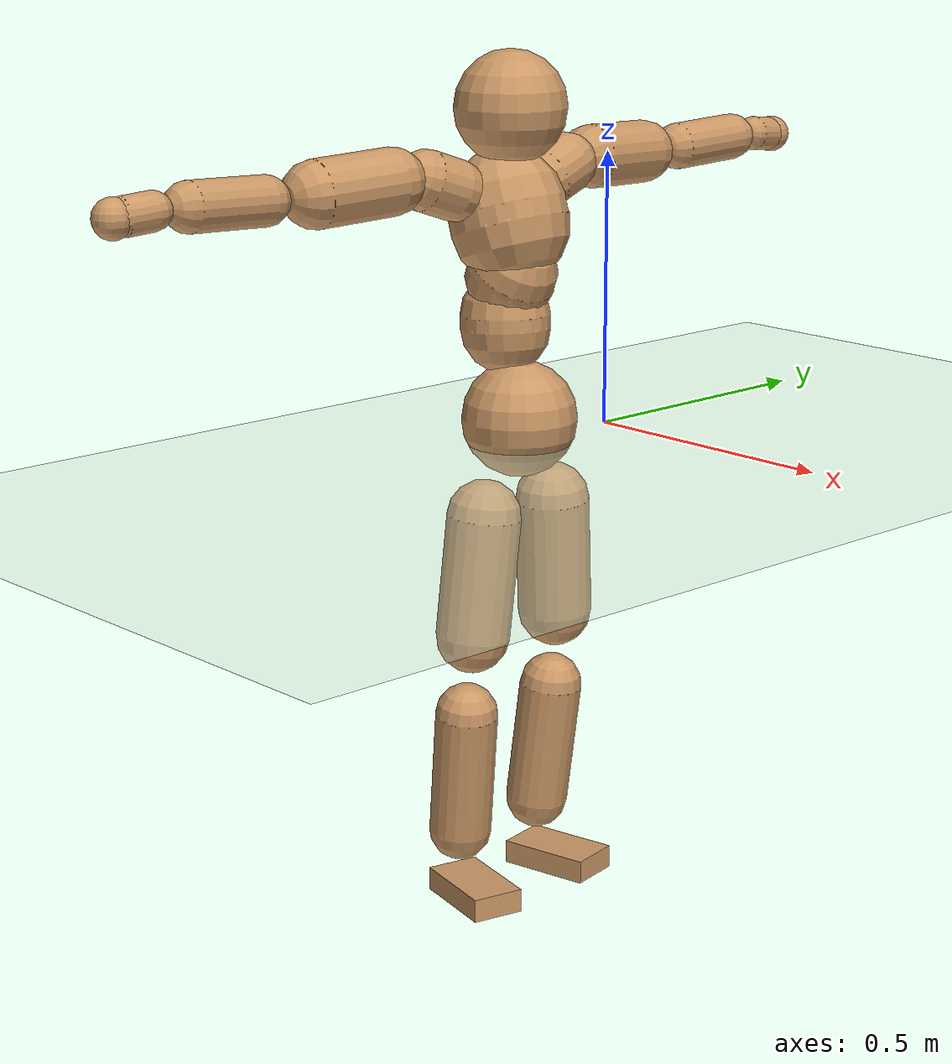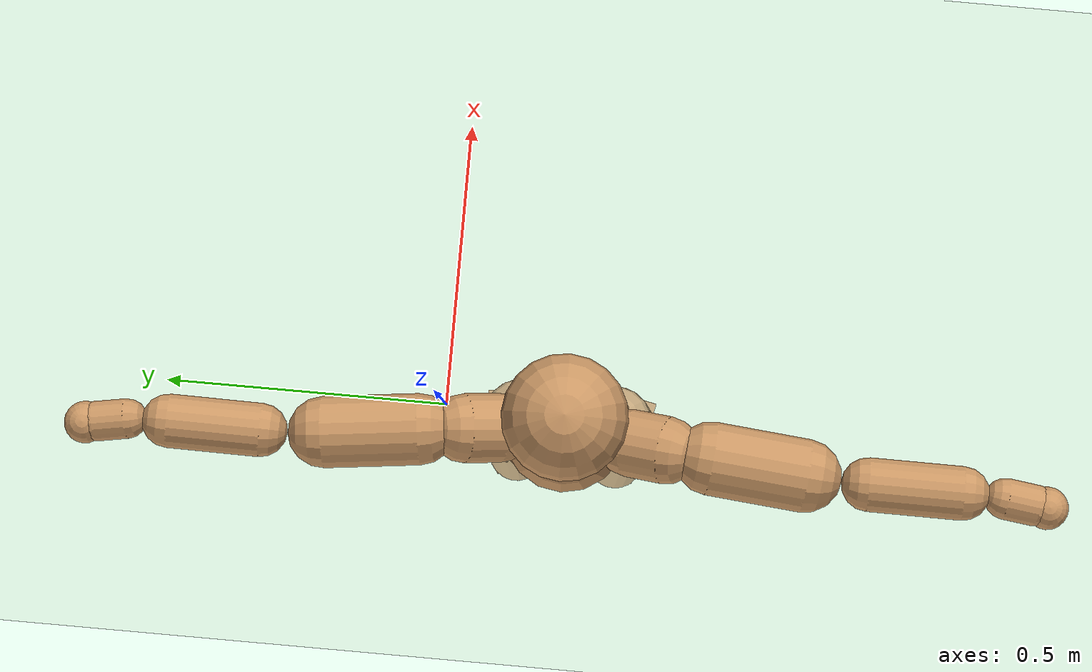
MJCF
<mujoco model="humanoid">
  <compiler coordinate="local"/>
  <default>
    <joint damping="0.0" armature="0.01" stiffness="0.0" limited="true"/>
    <geom conaffinity="1" condim="3" contype="7" margin="0.001" rgba="0.8 0.6 .4 1"/>
  </default>
  <asset>
    <texture type="skybox" builtin="gradient" rgb1=".4 .5 .6" rgb2="0 0 0" width="100" height="100"/>
    <texture builtin="flat" height="1278" mark="cross" markrgb="1 1 1" name="texgeom" random="0.01" rgb1="0.8 0.6 0.4" rgb2="0.8 0.6 0.4" type="cube" width="127"/>
    <texture builtin="checker" height="100" name="texplane" rgb1="0 0 0" rgb2="0.8 0.8 0.8" type="2d" width="100"/>
    <material name="MatPlane" reflectance="0.5" shininess="1" specular="1" texrepeat="60 60" texture="texplane"/>
    <material name="geom" texture="texgeom" texuniform="true"/>
  </asset>
  <worldbody>
    <light cutoff="100" diffuse="1 1 1" dir="-0 0 -1.3" directional="true" exponent="1" pos="0 0 1.3" specular=".1 .1 .1"/>
    <geom conaffinity="1" condim="3" name="floor" pos="0 0 0" rgba="0.8 0.9 0.8 1" size="100 100 .2" type="plane" material="MatPlane"/>
    <body name="Pelvis" pos="0.0005 -0.2168 0.0434">
      <freejoint name="Pelvis"/>
      <geom type="sphere" contype="1" conaffinity="1" density="500" size="0.1048" pos="0.0000 0.0000 0.0000" name="Pelvis"/>
      <body name="L_Hip" pos="-0.0014 0.0808 -0.0932">
        <joint name="L_Hip_x" type="hinge" pos="0 0 0" axis="1 0 0" stiffness="800" damping="80" armature="0.02" range="-180.0000 180.0000"/>
        <joint name="L_Hip_y" type="hinge" pos="0 0 0" axis="0 1 0" stiffness="800" damping="80" armature="0.02" range="-180.0000 180.0000"/>
        <joint name="L_Hip_z" type="hinge" pos="0 0 0" axis="0 0 1" stiffness="800" damping="80" armature="0.02" range="-180.0000 180.0000"/>
        <geom type="capsule" contype="1" conaffinity="1" density="500" fromto="-0.0026 0.0054 -0.0723 -0.0106 0.0215 -0.2894" size="0.0679" name="L_Hip"/>
        <body name="L_Knee" pos="-0.0132 0.0269 -0.3617">
          <joint name="L_Knee_x" type="hinge" pos="0 0 0" axis="1 0 0" stiffness="800" damping="80" armature="0.02" range="-180.0000 180.0000"/>
          <joint name="L_Knee_y" type="hinge" pos="0 0 0" axis="0 1 0" stiffness="800" damping="80" armature="0.02" range="-180.0000 180.0000"/>
          <joint name="L_Knee_z" type="hinge" pos="0 0 0" axis="0 0 1" stiffness="800" damping="80" armature="0.02" range="-180.0000 180.0000"/>
          <geom type="capsule" contype="1" conaffinity="1" density="500" fromto="-0.0097 -0.0025 -0.0781 -0.0390 -0.0099 -0.3124" size="0.0576" name="L_Knee"/>
          <body name="L_Ankle" pos="-0.0487 -0.0124 -0.3905">
            <joint name="L_Ankle_x" type="hinge" pos="0 0 0" axis="1 0 0" stiffness="800" damping="80" armature="0.02" range="-180.0000 180.0000"/>
            <joint name="L_Ankle_y" type="hinge" pos="0 0 0" axis="0 1 0" stiffness="800" damping="80" armature="0.02" range="-180.0000 180.0000"/>
            <joint name="L_Ankle_z" type="hinge" pos="0 0 0" axis="0 0 1" stiffness="800" damping="80" armature="0.02" range="-180.0000 180.0000"/>
            <geom type="box" contype="1" conaffinity="1" density="500" pos="0.0592 0.0116 -0.0277" size="0.0856 0.0484 0.0214" quat="0.9953 0.0000 0.0000 0.0965" name="L_Ankle"/>
            <body name="L_Toe" pos="0.1184 0.0232 -0.0554">
              <joint name="L_Toe_x" type="hinge" pos="0 0 0" axis="1 0 0" stiffness="500" damping="50" armature="0.02" range="-180.0000 180.0000"/>
              <joint name="L_Toe_y" type="hinge" pos="0 0 0" axis="0 1 0" stiffness="500" damping="50" armature="0.02" range="-180.0000 180.0000"/>
              <joint name="L_Toe_z" type="hinge" pos="0 0 0" axis="0 0 1" stiffness="500" damping="50" armature="0.02" range="-180.0000 180.0000"/>
              <geom type="box" contype="1" conaffinity="1" density="500" pos="0.0000 0.0000 0.0276" size="0.001 0.0024 0.0011" quat="0.9947 0.0000 0.0000 0.1029" name="L_Toe"/>
            </body>
          </body>
        </body>
      </body>
      <body name="R_Hip" pos="0.0019 -0.0785 -0.0929">
        <joint name="R_Hip_x" type="hinge" pos="0 0 0" axis="1 0 0" stiffness="800" damping="80" armature="0.02" range="-180.0000 180.0000"/>
        <joint name="R_Hip_y" type="hinge" pos="0 0 0" axis="0 1 0" stiffness="800" damping="80" armature="0.02" range="-180.0000 180.0000"/>
        <joint name="R_Hip_z" type="hinge" pos="0 0 0" axis="0 0 1" stiffness="800" damping="80" armature="0.02" range="-180.0000 180.0000"/>
        <geom type="capsule" contype="1" conaffinity="1" density="500" fromto="-0.0030 -0.0066 -0.0739 -0.0122 -0.0264 -0.2955" size="0.0672" name="R_Hip"/>
        <body name="R_Knee" pos="-0.0152 -0.0331 -0.3693">
          <joint name="R_Knee_x" type="hinge" pos="0 0 0" axis="1 0 0" stiffness="800" damping="80" armature="0.02" range="-180.0000 180.0000"/>
          <joint name="R_Knee_y" type="hinge" pos="0 0 0" axis="0 1 0" stiffness="800" damping="80" armature="0.02" range="-180.0000 180.0000"/>
          <joint name="R_Knee_z" type="hinge" pos="0 0 0" axis="0 0 1" stiffness="800" damping="80" armature="0.02" range="-180.0000 180.0000"/>
          <geom type="capsule" contype="1" conaffinity="1" density="500" fromto="-0.0095 0.0029 -0.0784 -0.0378 0.0115 -0.3135" size="0.0574" name="R_Knee"/>
          <body name="R_Ankle" pos="-0.0473 0.0144 -0.3919">
            <joint name="R_Ankle_x" type="hinge" pos="0 0 0" axis="1 0 0" stiffness="800" damping="80" armature="0.02" range="-180.0000 180.0000"/>
            <joint name="R_Ankle_y" type="hinge" pos="0 0 0" axis="0 1 0" stiffness="800" damping="80" armature="0.02" range="-180.0000 180.0000"/>
            <joint name="R_Ankle_z" type="hinge" pos="0 0 0" axis="0 0 1" stiffness="800" damping="80" armature="0.02" range="-180.0000 180.0000"/>
            <geom type="box" contype="1" conaffinity="1" density="500" pos="0.0610 -0.0135 -0.0241" size="0.0854 0.0484 0.0215" quat="0.9940 0.0000 0.0000 -0.1089" name="R_Ankle"/>
            <body name="R_Toe" pos="0.1221 -0.0271 -0.0481">
              <joint name="R_Toe_x" type="hinge" pos="0 0 0" axis="1 0 0" stiffness="500" damping="50" armature="0.02" range="-180.0000 180.0000"/>
              <joint name="R_Toe_y" type="hinge" pos="0 0 0" axis="0 1 0" stiffness="500" damping="50" armature="0.02" range="-180.0000 180.0000"/>
              <joint name="R_Toe_z" type="hinge" pos="0 0 0" axis="0 0 1" stiffness="500" damping="50" armature="0.02" range="-180.0000 180.0000"/>
              <geom type="box" contype="1" conaffinity="1" density="500" pos="0.0000 0.0000 0.0244" size="0.001 0.0024 0.0011" quat="0.9950 0.0000 0.0000 -0.0996" name="R_Toe"/>
            </body>
          </body>
        </body>
      </body>
      <body name="Torso" pos="-0.0336 -0.0021 0.1097">
        <joint name="Torso_x" type="hinge" pos="0 0 0" axis="1 0 0" stiffness="1000" damping="100" armature="0.02" range="-180.0000 180.0000"/>
        <joint name="Torso_y" type="hinge" pos="0 0 0" axis="0 1 0" stiffness="1000" damping="100" armature="0.02" range="-180.0000 180.0000"/>
        <joint name="Torso_z" type="hinge" pos="0 0 0" axis="0 0 1" stiffness="1000" damping="100" armature="0.02" range="-180.0000 180.0000"/>
        <geom type="capsule" contype="1" conaffinity="1" density="500" fromto="-0.0036 0.0015 0.0729 -0.0024 0.0010 0.0486" size="0.081" name="Torso"/>
        <body name="Spine" pos="-0.006 0.0026 0.1215">
          <joint name="Spine_x" type="hinge" pos="0 0 0" axis="1 0 0" stiffness="1000" damping="100" armature="0.02" range="-180.0000 180.0000"/>
          <joint name="Spine_y" type="hinge" pos="0 0 0" axis="0 1 0" stiffness="1000" damping="100" armature="0.02" range="-180.0000 180.0000"/>
          <joint name="Spine_z" type="hinge" pos="0 0 0" axis="0 0 1" stiffness="1000" damping="100" armature="0.02" range="-180.0000 180.0000"/>
          <geom type="capsule" contype="1" conaffinity="1" density="500" fromto="0.0194 0.0012 0.0294 0.0129 0.0008 0.0196" size="0.0809" name="Spine"/>
          <body name="Chest" pos="0.0323 0.002 0.0491">
            <joint name="Chest_x" type="hinge" pos="0 0 0" axis="1 0 0" stiffness="1000" damping="100" armature="0.02" range="-180.0000 180.0000"/>
            <joint name="Chest_y" type="hinge" pos="0 0 0" axis="0 1 0" stiffness="1000" damping="100" armature="0.02" range="-180.0000 180.0000"/>
            <joint name="Chest_z" type="hinge" pos="0 0 0" axis="0 0 1" stiffness="1000" damping="100" armature="0.02" range="-180.0000 180.0000"/>
            <geom type="capsule" contype="1" conaffinity="1" density="500" fromto="-0.0299 -0.0004 0.0943 -0.0199 -0.0003 0.0629" size="0.1064" name="Chest"/>
            <body name="Neck" pos="-0.0649 -0.0007 0.2184">
              <joint name="Neck_x" type="hinge" pos="0 0 0" axis="1 0 0" stiffness="500" damping="50" armature="0.02" range="-180.0000 180.0000"/>
              <joint name="Neck_y" type="hinge" pos="0 0 0" axis="0 1 0" stiffness="500" damping="50" armature="0.02" range="-180.0000 180.0000"/>
              <joint name="Neck_z" type="hinge" pos="0 0 0" axis="0 0 1" stiffness="500" damping="50" armature="0.02" range="-180.0000 180.0000"/>
              <geom type="capsule" contype="1" conaffinity="1" density="500" fromto="0.0088 0.0004 0.0104 0.0352 0.0015 0.0414" size="0.0435" name="Neck"/>
              <body name="Head" pos="0.044 0.0019 0.0518">
                <joint name="Head_x" type="hinge" pos="0 0 0" axis="1 0 0" stiffness="500" damping="50" armature="0.02" range="-180.0000 180.0000"/>
                <joint name="Head_y" type="hinge" pos="0 0 0" axis="0 1 0" stiffness="500" damping="50" armature="0.02" range="-180.0000 180.0000"/>
                <joint name="Head_z" type="hinge" pos="0 0 0" axis="0 0 1" stiffness="500" damping="50" armature="0.02" range="-180.0000 180.0000"/>
                <geom type="sphere" contype="1" conaffinity="1" density="500" size="0.1010" pos="0.0000 0.0000 0.0000" name="Head"/>
              </body>
            </body>
            <body name="L_Thorax" pos="-0.0397 0.0854 0.1277">
              <joint name="L_Thorax_x" type="hinge" pos="0 0 0" axis="1 0 0" stiffness="500" damping="50" armature="0.02" range="-180.0000 180.0000"/>
              <joint name="L_Thorax_y" type="hinge" pos="0 0 0" axis="0 1 0" stiffness="500" damping="50" armature="0.02" range="-180.0000 180.0000"/>
              <joint name="L_Thorax_z" type="hinge" pos="0 0 0" axis="0 0 1" stiffness="500" damping="50" armature="0.02" range="-180.0000 180.0000"/>
              <geom type="capsule" contype="1" conaffinity="1" density="500" fromto="-0.0020 0.0191 0.0067 -0.0081 0.0763 0.0269" size="0.0561" name="L_Thorax"/>
              <body name="L_Shoulder" pos="-0.0102 0.0954 0.0336">
                <joint name="L_Shoulder_x" type="hinge" pos="0 0 0" axis="1 0 0" stiffness="500" damping="50" armature="0.02" range="-720.0000 720.0000"/>
                <joint name="L_Shoulder_y" type="hinge" pos="0 0 0" axis="0 1 0" stiffness="500" damping="50" armature="0.02" range="-720.0000 720.0000"/>
                <joint name="L_Shoulder_z" type="hinge" pos="0 0 0" axis="0 0 1" stiffness="500" damping="50" armature="0.02" range="-720.0000 720.0000"/>
                <geom type="capsule" contype="1" conaffinity="1" density="500" fromto="-0.0061 0.0515 -0.0021 -0.0244 0.2062 -0.0082" size="0.058" name="L_Shoulder"/>
                <body name="L_Elbow" pos="-0.0305 0.2577 -0.0103">
                  <joint name="L_Elbow_x" type="hinge" pos="0 0 0" axis="1 0 0" stiffness="500" damping="50" armature="0.02" range="-720.0000 720.0000"/>
                  <joint name="L_Elbow_y" type="hinge" pos="0 0 0" axis="0 1 0" stiffness="500" damping="50" armature="0.02" range="-720.0000 720.0000"/>
                  <joint name="L_Elbow_z" type="hinge" pos="0 0 0" axis="0 0 1" stiffness="500" damping="50" armature="0.02" range="-720.0000 720.0000"/>
                  <geom type="capsule" contype="1" conaffinity="1" density="500" fromto="0.0005 0.0496 0.0020 0.0019 0.1986 0.0078" size="0.0434" name="L_Elbow"/>
                  <body name="L_Wrist" pos="0.0023 0.2482 0.0098">
                    <joint name="L_Wrist_x" type="hinge" pos="0 0 0" axis="1 0 0" stiffness="300" damping="30" armature="0.02" range="-180.0000 180.0000"/>
                    <joint name="L_Wrist_y" type="hinge" pos="0 0 0" axis="0 1 0" stiffness="300" damping="30" armature="0.02" range="-180.0000 180.0000"/>
                    <joint name="L_Wrist_z" type="hinge" pos="0 0 0" axis="0 0 1" stiffness="300" damping="30" armature="0.02" range="-180.0000 180.0000"/>
                    <geom type="capsule" contype="1" conaffinity="1" density="500" fromto="-0.0028 0.0170 -0.0019 -0.0114 0.0681 -0.0076" size="0.0325" name="L_Wrist"/>
                    <body name="L_Hand" pos="-0.0142 0.0851 -0.0095">
                      <joint name="L_Hand_x" type="hinge" pos="0 0 0" axis="1 0 0" stiffness="300" damping="30" armature="0.02" range="-180.0000 180.0000"/>
                      <joint name="L_Hand_y" type="hinge" pos="0 0 0" axis="0 1 0" stiffness="300" damping="30" armature="0.02" range="-180.0000 180.0000"/>
                      <joint name="L_Hand_z" type="hinge" pos="0 0 0" axis="0 0 1" stiffness="300" damping="30" armature="0.02" range="-180.0000 180.0000"/>
                      <geom type="sphere" contype="1" conaffinity="1" density="500" size="0.0342" pos="0.0000 0.0000 0.0000" name="L_Hand"/>
                    </body>
                  </body>
                </body>
              </body>
            </body>
            <body name="R_Thorax" pos="-0.0448 -0.087 0.1255">
              <joint name="R_Thorax_x" type="hinge" pos="0 0 0" axis="1 0 0" stiffness="500" damping="50" armature="0.02" range="-180.0000 180.0000"/>
              <joint name="R_Thorax_y" type="hinge" pos="0 0 0" axis="0 1 0" stiffness="500" damping="50" armature="0.02" range="-180.0000 180.0000"/>
              <joint name="R_Thorax_z" type="hinge" pos="0 0 0" axis="0 0 1" stiffness="500" damping="50" armature="0.02" range="-180.0000 180.0000"/>
              <geom type="capsule" contype="1" conaffinity="1" density="500" fromto="-0.0024 -0.0200 0.0071 -0.0095 -0.0799 0.0285" size="0.055" name="R_Thorax"/>
              <body name="R_Shoulder" pos="-0.0119 -0.0999 0.0357">
                <joint name="R_Shoulder_x" type="hinge" pos="0 0 0" axis="1 0 0" stiffness="500" damping="50" armature="0.02" range="-720.0000 720.0000"/>
                <joint name="R_Shoulder_y" type="hinge" pos="0 0 0" axis="0 1 0" stiffness="500" damping="50" armature="0.02" range="-720.0000 720.0000"/>
                <joint name="R_Shoulder_z" type="hinge" pos="0 0 0" axis="0 0 1" stiffness="500" damping="50" armature="0.02" range="-720.0000 720.0000"/>
                <geom type="capsule" contype="1" conaffinity="1" density="500" fromto="-0.0047 -0.0514 -0.0025 -0.0187 -0.2056 -0.0100" size="0.0595" name="R_Shoulder"/>
                <body name="R_Elbow" pos="-0.0233 -0.257 -0.0125">
                  <joint name="R_Elbow_x" type="hinge" pos="0 0 0" axis="1 0 0" stiffness="500" damping="50" armature="0.02" range="-720.0000 720.0000"/>
                  <joint name="R_Elbow_y" type="hinge" pos="0 0 0" axis="0 1 0" stiffness="500" damping="50" armature="0.02" range="-720.0000 720.0000"/>
                  <joint name="R_Elbow_z" type="hinge" pos="0 0 0" axis="0 0 1" stiffness="500" damping="50" armature="0.02" range="-720.0000 720.0000"/>
                  <geom type="capsule" contype="1" conaffinity="1" density="500" fromto="-0.0003 -0.0509 0.0019 -0.0011 -0.2035 0.0075" size="0.0436" name="R_Elbow"/>
                  <body name="R_Wrist" pos="-0.0014 -0.2544 0.0094">
                    <joint name="R_Wrist_x" type="hinge" pos="0 0 0" axis="1 0 0" stiffness="300" damping="30" armature="0.02" range="-180.0000 180.0000"/>
                    <joint name="R_Wrist_y" type="hinge" pos="0 0 0" axis="0 1 0" stiffness="300" damping="30" armature="0.02" range="-180.0000 180.0000"/>
                    <joint name="R_Wrist_z" type="hinge" pos="0 0 0" axis="0 0 1" stiffness="300" damping="30" armature="0.02" range="-180.0000 180.0000"/>
                    <geom type="capsule" contype="1" conaffinity="1" density="500" fromto="-0.0022 -0.0173 -0.0014 -0.0089 -0.0694 -0.0058" size="0.0335" name="R_Wrist"/>
                    <body name="R_Hand" pos="-0.0112 -0.0867 -0.0072">
                      <joint name="R_Hand_x" type="hinge" pos="0 0 0" axis="1 0 0" stiffness="300" damping="30" armature="0.02" range="-180.0000 180.0000"/>
                      <joint name="R_Hand_y" type="hinge" pos="0 0 0" axis="0 1 0" stiffness="300" damping="30" armature="0.02" range="-180.0000 180.0000"/>
                      <joint name="R_Hand_z" type="hinge" pos="0 0 0" axis="0 0 1" stiffness="300" damping="30" armature="0.02" range="-180.0000 180.0000"/>
                      <geom type="sphere" contype="1" conaffinity="1" density="500" size="0.0348" pos="0.0000 0.0000 0.0000" name="R_Hand"/>
                    </body>
                  </body>
                </body>
              </body>
            </body>
          </body>
        </body>
      </body>
    </body>
  </worldbody>
  <actuator>
    <motor name="L_Hip_x" joint="L_Hip_x" gear="500"/>
    <motor name="L_Hip_y" joint="L_Hip_y" gear="500"/>
    <motor name="L_Hip_z" joint="L_Hip_z" gear="500"/>
    <motor name="L_Knee_x" joint="L_Knee_x" gear="500"/>
    <motor name="L_Knee_y" joint="L_Knee_y" gear="500"/>
    <motor name="L_Knee_z" joint="L_Knee_z" gear="500"/>
    <motor name="L_Ankle_x" joint="L_Ankle_x" gear="500"/>
    <motor name="L_Ankle_y" joint="L_Ankle_y" gear="500"/>
    <motor name="L_Ankle_z" joint="L_Ankle_z" gear="500"/>
    <motor name="L_Toe_x" joint="L_Toe_x" gear="500"/>
    <motor name="L_Toe_y" joint="L_Toe_y" gear="500"/>
    <motor name="L_Toe_z" joint="L_Toe_z" gear="500"/>
    <motor name="R_Hip_x" joint="R_Hip_x" gear="500"/>
    <motor name="R_Hip_y" joint="R_Hip_y" gear="500"/>
    <motor name="R_Hip_z" joint="R_Hip_z" gear="500"/>
    <motor name="R_Knee_x" joint="R_Knee_x" gear="500"/>
    <motor name="R_Knee_y" joint="R_Knee_y" gear="500"/>
    <motor name="R_Knee_z" joint="R_Knee_z" gear="500"/>
    <motor name="R_Ankle_x" joint="R_Ankle_x" gear="500"/>
    <motor name="R_Ankle_y" joint="R_Ankle_y" gear="500"/>
    <motor name="R_Ankle_z" joint="R_Ankle_z" gear="500"/>
    <motor name="R_Toe_x" joint="R_Toe_x" gear="500"/>
    <motor name="R_Toe_y" joint="R_Toe_y" gear="500"/>
    <motor name="R_Toe_z" joint="R_Toe_z" gear="500"/>
    <motor name="Torso_x" joint="Torso_x" gear="500"/>
    <motor name="Torso_y" joint="Torso_y" gear="500"/>
    <motor name="Torso_z" joint="Torso_z" gear="500"/>
    <motor name="Spine_x" joint="Spine_x" gear="500"/>
    <motor name="Spine_y" joint="Spine_y" gear="500"/>
    <motor name="Spine_z" joint="Spine_z" gear="500"/>
    <motor name="Chest_x" joint="Chest_x" gear="500"/>
    <motor name="Chest_y" joint="Chest_y" gear="500"/>
    <motor name="Chest_z" joint="Chest_z" gear="500"/>
    <motor name="Neck_x" joint="Neck_x" gear="500"/>
    <motor name="Neck_y" joint="Neck_y" gear="500"/>
    <motor name="Neck_z" joint="Neck_z" gear="500"/>
    <motor name="Head_x" joint="Head_x" gear="500"/>
    <motor name="Head_y" joint="Head_y" gear="500"/>
    <motor name="Head_z" joint="Head_z" gear="500"/>
    <motor name="L_Thorax_x" joint="L_Thorax_x" gear="500"/>
    <motor name="L_Thorax_y" joint="L_Thorax_y" gear="500"/>
    <motor name="L_Thorax_z" joint="L_Thorax_z" gear="500"/>
    <motor name="L_Shoulder_x" joint="L_Shoulder_x" gear="500"/>
    <motor name="L_Shoulder_y" joint="L_Shoulder_y" gear="500"/>
    <motor name="L_Shoulder_z" joint="L_Shoulder_z" gear="500"/>
    <motor name="L_Elbow_x" joint="L_Elbow_x" gear="500"/>
    <motor name="L_Elbow_y" joint="L_Elbow_y" gear="500"/>
    <motor name="L_Elbow_z" joint="L_Elbow_z" gear="500"/>
    <motor name="L_Wrist_x" joint="L_Wrist_x" gear="500"/>
    <motor name="L_Wrist_y" joint="L_Wrist_y" gear="500"/>
    <motor name="L_Wrist_z" joint="L_Wrist_z" gear="500"/>
    <motor name="L_Hand_x" joint="L_Hand_x" gear="500"/>
    <motor name="L_Hand_y" joint="L_Hand_y" gear="500"/>
    <motor name="L_Hand_z" joint="L_Hand_z" gear="500"/>
    <motor name="R_Thorax_x" joint="R_Thorax_x" gear="500"/>
    <motor name="R_Thorax_y" joint="R_Thorax_y" gear="500"/>
    <motor name="R_Thorax_z" joint="R_Thorax_z" gear="500"/>
    <motor name="R_Shoulder_x" joint="R_Shoulder_x" gear="500"/>
    <motor name="R_Shoulder_y" joint="R_Shoulder_y" gear="500"/>
    <motor name="R_Shoulder_z" joint="R_Shoulder_z" gear="500"/>
    <motor name="R_Elbow_x" joint="R_Elbow_x" gear="500"/>
    <motor name="R_Elbow_y" joint="R_Elbow_y" gear="500"/>
    <motor name="R_Elbow_z" joint="R_Elbow_z" gear="500"/>
    <motor name="R_Wrist_x" joint="R_Wrist_x" gear="500"/>
    <motor name="R_Wrist_y" joint="R_Wrist_y" gear="500"/>
    <motor name="R_Wrist_z" joint="R_Wrist_z" gear="500"/>
    <motor name="R_Hand_x" joint="R_Hand_x" gear="500"/>
    <motor name="R_Hand_y" joint="R_Hand_y" gear="500"/>
    <motor name="R_Hand_z" joint="R_Hand_z" gear="500"/>
  </actuator>
  <contact>
    <exclude body1="Torso" body2="Chest"/>
    <exclude body1="Head" body2="Chest"/>
    <exclude body1="R_Knee" body2="R_Toe"/>
    <exclude body1="R_Knee" body2="L_Ankle"/>
    <exclude body1="R_Knee" body2="L_Toe"/>
    <exclude body1="L_Knee" body2="L_Toe"/>
    <exclude body1="L_Knee" body2="R_Ankle"/>
    <exclude body1="L_Knee" body2="R_Toe"/>
    <exclude body1="L_Shoulder" body2="Chest"/>
    <exclude body1="R_Shoulder" body2="Chest"/>
  </contact>
  <sensor/>
  <size njmax="700" nconmax="700"/>
</mujoco>
